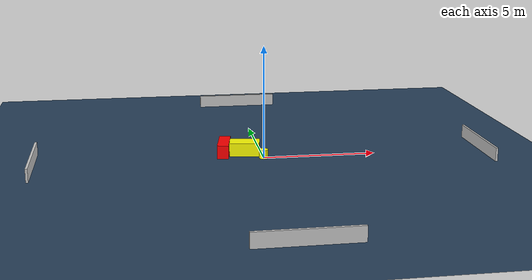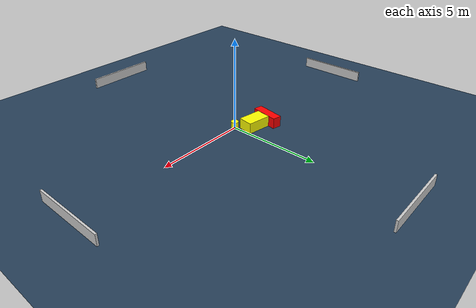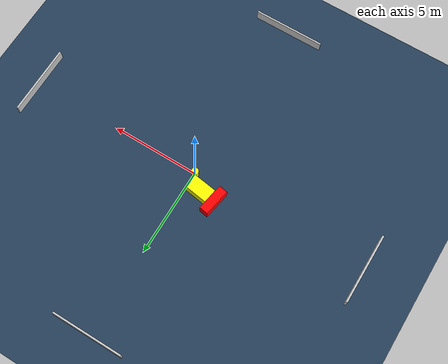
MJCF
<?xml version="1.0" ?>
<mujoco model="generated_environment">
  <option timestep="0.01" integrator="RK4" cone="elliptic"/>
  <default>
    <geom density="1"/>
  </default>
  <asset>
    <texture builtin="gradient" height="3072" name="skybox" rgb1="0.3 0.5 0.7" rgb2="0 0 0" type="skybox" width="512"/>
    <texture builtin="checker" height="300" name="groundplane" rgb1="0.2 0.3 0.4" rgb2="0.1 0.2 0.3" type="2d" width="300"/>
    <material name="groundplane" reflectance="0.2" texrepeat="5 5" texture="groundplane"/>
  </asset>
  <worldbody>
    <light dir="0 0 -1" directional="true" pos="0 0 1.5"/>
    <geom condim="3" friction="0.5 0.005 0.001" material="groundplane" name="floor" pos="0 0 0" size="0 0 0.05" type="plane"/>
    <body name="walls">
      <geom name="wall_1" condim="4" pos="-10.0 0.0 0.3" rgba="0.800000011920929 0.800000011920929 0.800000011920929 1.0" size="0.05 2.0 0.3" type="box"/>
      <geom name="wall_2" condim="4" pos="10.0 0.0 0.3" rgba="0.800000011920929 0.800000011920929 0.800000011920929 1.0" size="0.05 2.0 0.3" type="box"/>
      <geom name="wall_3" condim="4" pos="0.0 -10.0 0.3" rgba="0.800000011920929 0.800000011920929 0.800000011920929 1.0" size="2.0 0.05 0.3" type="box"/>
      <geom name="wall_4" condim="4" pos="0.0 10.0 0.3" rgba="0.800000011920929 0.800000011920929 0.800000011920929 1.0" size="2.0 0.05 0.3" type="box"/>
    </body>
    <body name="robot">
      <joint name="joint_x" type="slide" pos="0 0 0" axis="1 0 0"/>
      <joint name="joint_y" type="slide" pos="0 0 0" axis="0 1 0"/>
      <geom name="robot" type="cylinder" pos="0.0 0.0 0.2" size="0.2 0.2 0.0" mass="5.0" friction="1.0 0.005 0.0001" condim="4" rgba="1.0 1.0 0.0 1.0"/>
    </body>
    <body name="obstacle_1_movable">
      <geom name="obstacle_1_movable" condim="4" pos="-0.7632633427536605 0.7282871408756514 0.3" euler="0 0 81.38315517439172" friction="0.0 0.005 0.001" rgba="1.0 1.0 0.0 1.0" size="0.4072163743473413 0.6670532834059154 0.3" type="box" mass="0.1"/>
      <joint type="free"/>
    </body>
    <body name="obstacle_2_static">
      <geom name="obstacle_2_static" condim="4" pos="-1.6752591741467757 0.9018256187233196 0.3" euler="0 0 350.06979454480705" friction="0.0 0.005 0.001" rgba="1.0 0.0 0.0 1.0" size="0.2511759322392533 0.782974796231245 0.3" type="box"/>
    </body>
  </worldbody>
  <actuator>
    <motor name="actuator_x" joint="joint_x" gear="1" ctrlrange="-1 1"/>
    <motor name="actuator_y" joint="joint_y" gear="1" ctrlrange="-1 1"/>
  </actuator>
</mujoco>
